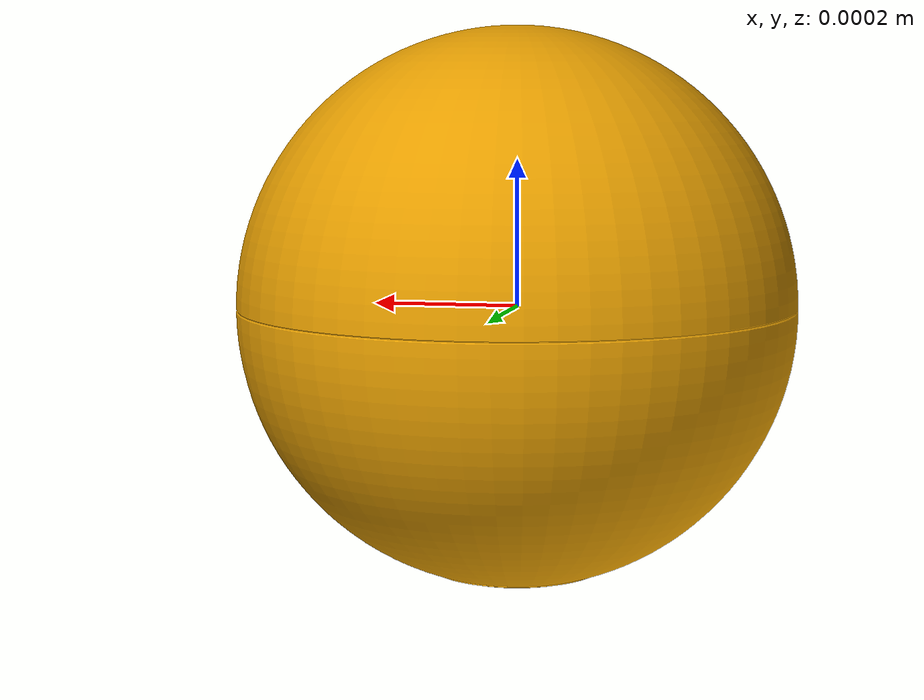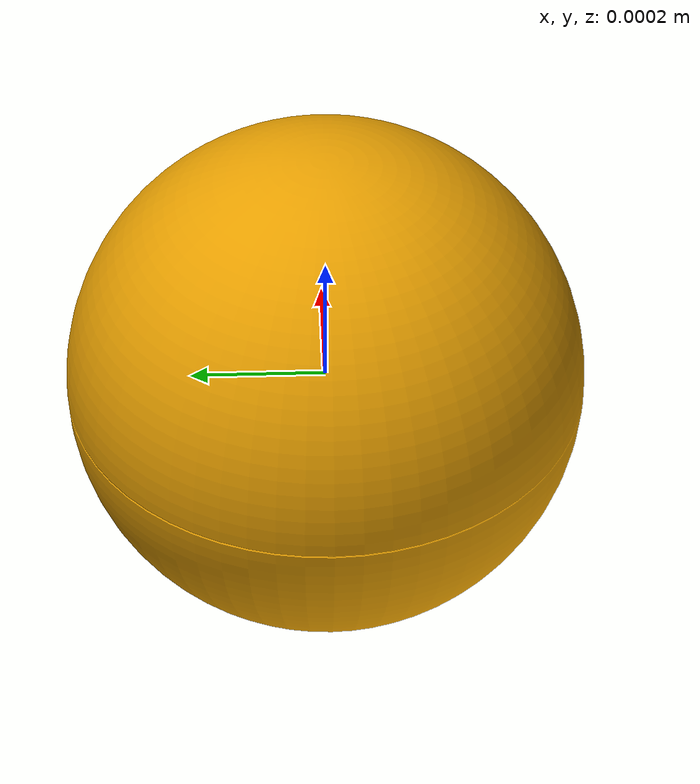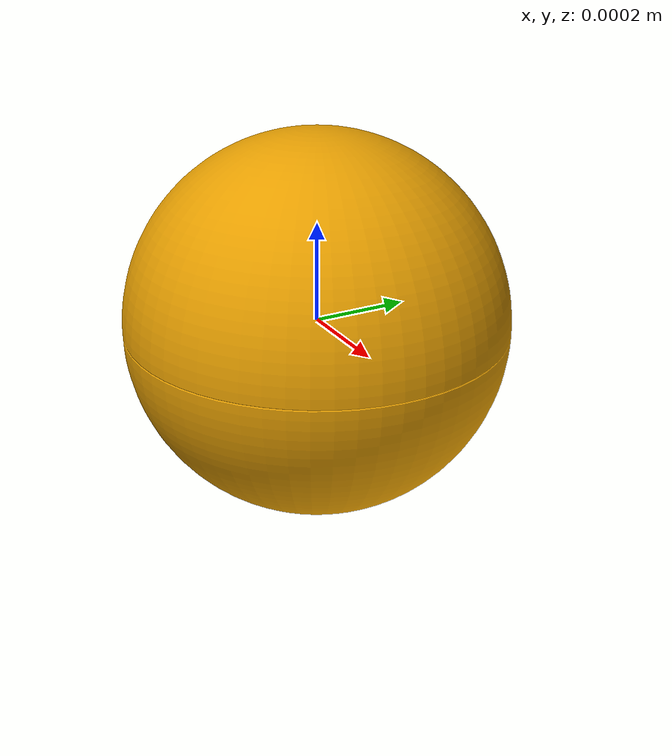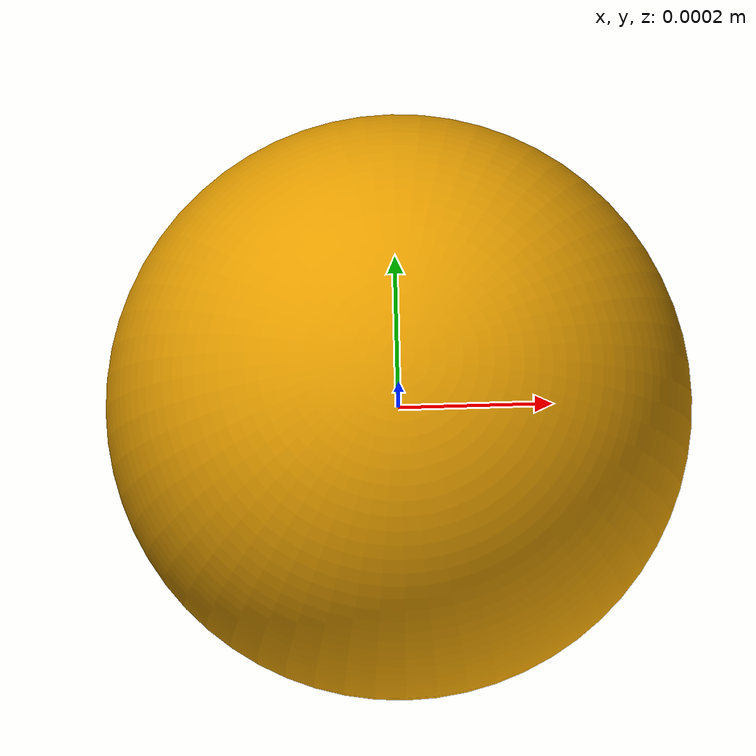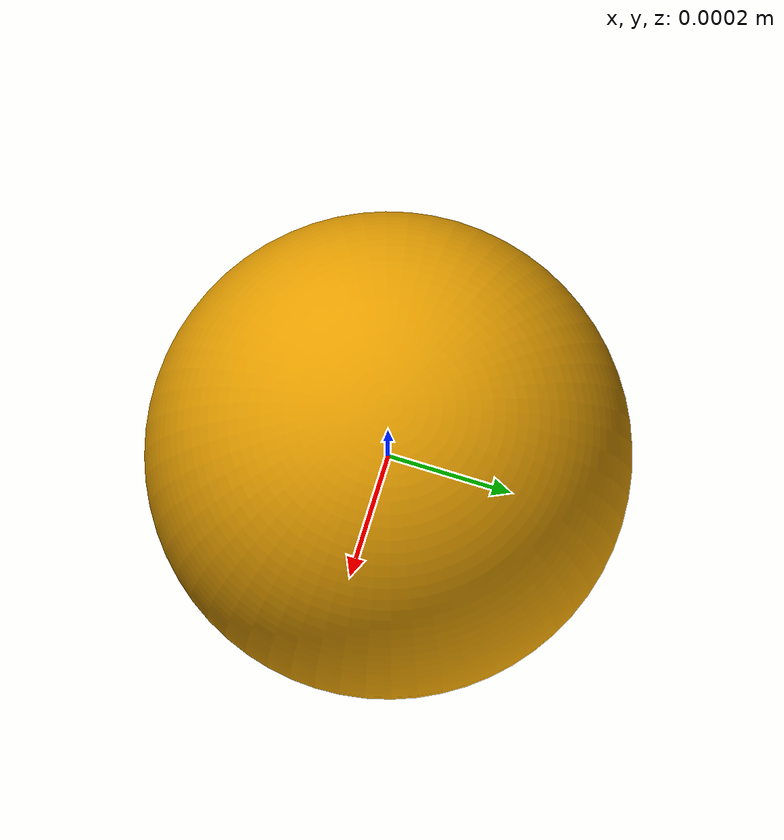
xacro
<?xml version="1.0"?>

<robot name="sprk" xmlns:xacro="http://ros.org/wiki/xacro">

<link name="base_link">

    <visual>
      <origin xyz=" 0 0 0" rpy="3.14 0 0" />
      <geometry>
	<mesh filename="package://sphero_description/meshes/Sphero_Textured.dae" scale=" 0.0127 0.0127 0.0127"/>
      </geometry>
    </visual>

    <collision>
      <origin xyz="0.0 0.0 0.0" rpy="0 0 0" />
      <geometry>
        <sphere radius="0.0381"/>
      </geometry>
    </collision>
  </link>

</robot>
